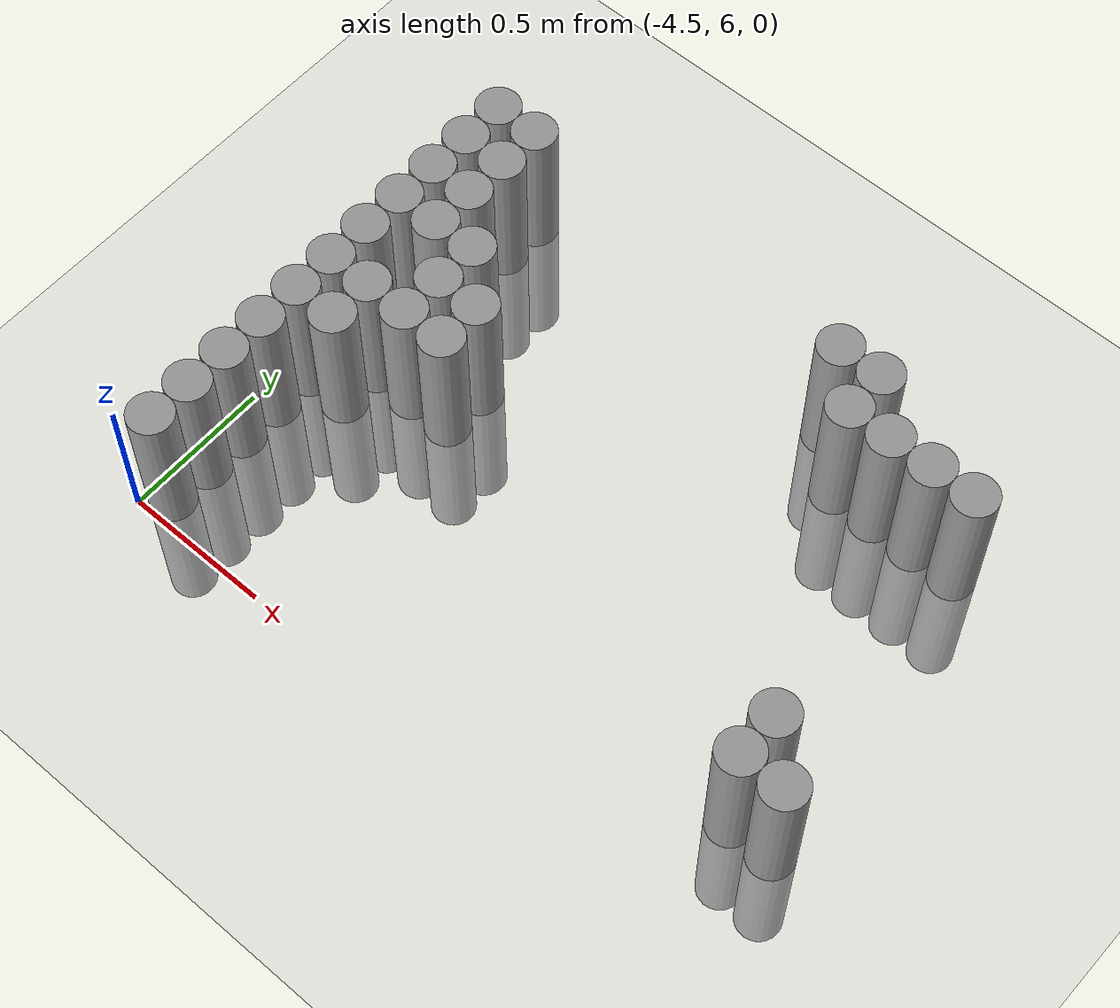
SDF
<sdf version="1.6">
 <world name="default">
  <model name="ground_plane">
   <static>1</static>
   <static>1</static>
   <link name="link">
    <collision name="collision">
     <geometry><plane><normal>0 0 1</normal><size>100 100</size></plane></geometry>
     <surface><friction><ode><mu>100</mu><mu2>50</mu2></ode></friction></surface>
    </collision>
    <visual name="visual">
     <cast_shadows>0</cast_shadows>
     <geometry><plane><normal>0 0 1</normal><size>100 100</size></plane></geometry>
     <material>
      <script><uri>file://media/materials/scripts/gazebo.material</uri><name>Gazebo/Grey</name></script>
     </material>
    </visual>
   </link>
  </model>
  <model name="unit_cylinder_102">
   <static>1</static>
   <pose>-4.425000 6.075000 0.000000 0.000000 0.000000 0.000000</pose>
   <link name="link">
    <inertial>
     <mass>1</mass>
     <inertia><ixx>0.145833</ixx><ixy>0</ixy><ixz>0</ixz><iyy>0.145833</iyy><iyz>0</iyz><izz>0.125</izz></inertia>
    </inertial>
    <collision name="collision">
     <geometry><cylinder><radius>0.075000</radius><length>1</length></cylinder></geometry>
    </collision>
    <visual name="visual">
     <geometry><cylinder><radius>0.075000</radius><length>1</length></cylinder></geometry>
     <material>
      <script><name>Gazebo/Grey</name><uri>file://media/materials/scripts/gazebo.material</uri></script>
     </material>
    </visual>
   </link>
  </model>
  <model name="unit_cylinder_103">
   <static>1</static>
   <pose>-4.425000 6.225000 0.000000 0.000000 0.000000 0.000000</pose>
   <link name="link">
    <inertial>
     <mass>1</mass>
     <inertia><ixx>0.145833</ixx><ixy>0</ixy><ixz>0</ixz><iyy>0.145833</iyy><iyz>0</iyz><izz>0.125</izz></inertia>
    </inertial>
    <collision name="collision">
     <geometry><cylinder><radius>0.075000</radius><length>1</length></cylinder></geometry>
    </collision>
    <visual name="visual">
     <geometry><cylinder><radius>0.075000</radius><length>1</length></cylinder></geometry>
     <material>
      <script><name>Gazebo/Grey</name><uri>file://media/materials/scripts/gazebo.material</uri></script>
     </material>
    </visual>
   </link>
  </model>
  <model name="unit_cylinder_104">
   <static>1</static>
   <pose>-4.425000 6.375000 0.000000 0.000000 0.000000 0.000000</pose>
   <link name="link">
    <inertial>
     <mass>1</mass>
     <inertia><ixx>0.145833</ixx><ixy>0</ixy><ixz>0</ixz><iyy>0.145833</iyy><iyz>0</iyz><izz>0.125</izz></inertia>
    </inertial>
    <collision name="collision">
     <geometry><cylinder><radius>0.075000</radius><length>1</length></cylinder></geometry>
    </collision>
    <visual name="visual">
     <geometry><cylinder><radius>0.075000</radius><length>1</length></cylinder></geometry>
     <material>
      <script><name>Gazebo/Grey</name><uri>file://media/materials/scripts/gazebo.material</uri></script>
     </material>
    </visual>
   </link>
  </model>
  <model name="unit_cylinder_105">
   <static>1</static>
   <pose>-4.425000 6.525000 0.000000 0.000000 0.000000 0.000000</pose>
   <link name="link">
    <inertial>
     <mass>1</mass>
     <inertia><ixx>0.145833</ixx><ixy>0</ixy><ixz>0</ixz><iyy>0.145833</iyy><iyz>0</iyz><izz>0.125</izz></inertia>
    </inertial>
    <collision name="collision">
     <geometry><cylinder><radius>0.075000</radius><length>1</length></cylinder></geometry>
    </collision>
    <visual name="visual">
     <geometry><cylinder><radius>0.075000</radius><length>1</length></cylinder></geometry>
     <material>
      <script><name>Gazebo/Grey</name><uri>file://media/materials/scripts/gazebo.material</uri></script>
     </material>
    </visual>
   </link>
  </model>
  <model name="unit_cylinder_106">
   <static>1</static>
   <pose>-4.425000 6.675000 0.000000 0.000000 0.000000 0.000000</pose>
   <link name="link">
    <inertial>
     <mass>1</mass>
     <inertia><ixx>0.145833</ixx><ixy>0</ixy><ixz>0</ixz><iyy>0.145833</iyy><iyz>0</iyz><izz>0.125</izz></inertia>
    </inertial>
    <collision name="collision">
     <geometry><cylinder><radius>0.075000</radius><length>1</length></cylinder></geometry>
    </collision>
    <visual name="visual">
     <geometry><cylinder><radius>0.075000</radius><length>1</length></cylinder></geometry>
     <material>
      <script><name>Gazebo/Grey</name><uri>file://media/materials/scripts/gazebo.material</uri></script>
     </material>
    </visual>
   </link>
  </model>
  <model name="unit_cylinder_107">
   <static>1</static>
   <pose>-4.425000 6.825000 0.000000 0.000000 0.000000 0.000000</pose>
   <link name="link">
    <inertial>
     <mass>1</mass>
     <inertia><ixx>0.145833</ixx><ixy>0</ixy><ixz>0</ixz><iyy>0.145833</iyy><iyz>0</iyz><izz>0.125</izz></inertia>
    </inertial>
    <collision name="collision">
     <geometry><cylinder><radius>0.075000</radius><length>1</length></cylinder></geometry>
    </collision>
    <visual name="visual">
     <geometry><cylinder><radius>0.075000</radius><length>1</length></cylinder></geometry>
     <material>
      <script><name>Gazebo/Grey</name><uri>file://media/materials/scripts/gazebo.material</uri></script>
     </material>
    </visual>
   </link>
  </model>
  <model name="unit_cylinder_108">
   <static>1</static>
   <pose>-4.425000 6.975000 0.000000 0.000000 0.000000 0.000000</pose>
   <link name="link">
    <inertial>
     <mass>1</mass>
     <inertia><ixx>0.145833</ixx><ixy>0</ixy><ixz>0</ixz><iyy>0.145833</iyy><iyz>0</iyz><izz>0.125</izz></inertia>
    </inertial>
    <collision name="collision">
     <geometry><cylinder><radius>0.075000</radius><length>1</length></cylinder></geometry>
    </collision>
    <visual name="visual">
     <geometry><cylinder><radius>0.075000</radius><length>1</length></cylinder></geometry>
     <material>
      <script><name>Gazebo/Grey</name><uri>file://media/materials/scripts/gazebo.material</uri></script>
     </material>
    </visual>
   </link>
  </model>
  <model name="unit_cylinder_109">
   <static>1</static>
   <pose>-4.425000 7.125000 0.000000 0.000000 0.000000 0.000000</pose>
   <link name="link">
    <inertial>
     <mass>1</mass>
     <inertia><ixx>0.145833</ixx><ixy>0</ixy><ixz>0</ixz><iyy>0.145833</iyy><iyz>0</iyz><izz>0.125</izz></inertia>
    </inertial>
    <collision name="collision">
     <geometry><cylinder><radius>0.075000</radius><length>1</length></cylinder></geometry>
    </collision>
    <visual name="visual">
     <geometry><cylinder><radius>0.075000</radius><length>1</length></cylinder></geometry>
     <material>
      <script><name>Gazebo/Grey</name><uri>file://media/materials/scripts/gazebo.material</uri></script>
     </material>
    </visual>
   </link>
  </model>
  <model name="unit_cylinder_110">
   <static>1</static>
   <pose>-4.425000 7.275000 0.000000 0.000000 0.000000 0.000000</pose>
   <link name="link">
    <inertial>
     <mass>1</mass>
     <inertia><ixx>0.145833</ixx><ixy>0</ixy><ixz>0</ixz><iyy>0.145833</iyy><iyz>0</iyz><izz>0.125</izz></inertia>
    </inertial>
    <collision name="collision">
     <geometry><cylinder><radius>0.075000</radius><length>1</length></cylinder></geometry>
    </collision>
    <visual name="visual">
     <geometry><cylinder><radius>0.075000</radius><length>1</length></cylinder></geometry>
     <material>
      <script><name>Gazebo/Grey</name><uri>file://media/materials/scripts/gazebo.material</uri></script>
     </material>
    </visual>
   </link>
  </model>
  <model name="unit_cylinder_111">
   <static>1</static>
   <pose>-4.425000 7.425000 0.000000 0.000000 0.000000 0.000000</pose>
   <link name="link">
    <inertial>
     <mass>1</mass>
     <inertia><ixx>0.145833</ixx><ixy>0</ixy><ixz>0</ixz><iyy>0.145833</iyy><iyz>0</iyz><izz>0.125</izz></inertia>
    </inertial>
    <collision name="collision">
     <geometry><cylinder><radius>0.075000</radius><length>1</length></cylinder></geometry>
    </collision>
    <visual name="visual">
     <geometry><cylinder><radius>0.075000</radius><length>1</length></cylinder></geometry>
     <material>
      <script><name>Gazebo/Grey</name><uri>file://media/materials/scripts/gazebo.material</uri></script>
     </material>
    </visual>
   </link>
  </model>
  <model name="unit_cylinder_112">
   <static>1</static>
   <pose>-4.425000 7.575000 0.000000 0.000000 0.000000 0.000000</pose>
   <link name="link">
    <inertial>
     <mass>1</mass>
     <inertia><ixx>0.145833</ixx><ixy>0</ixy><ixz>0</ixz><iyy>0.145833</iyy><iyz>0</iyz><izz>0.125</izz></inertia>
    </inertial>
    <collision name="collision">
     <geometry><cylinder><radius>0.075000</radius><length>1</length></cylinder></geometry>
    </collision>
    <visual name="visual">
     <geometry><cylinder><radius>0.075000</radius><length>1</length></cylinder></geometry>
     <material>
      <script><name>Gazebo/Grey</name><uri>file://media/materials/scripts/gazebo.material</uri></script>
     </material>
    </visual>
   </link>
  </model>
  <model name="unit_cylinder_126">
   <static>1</static>
   <pose>-4.275000 6.675000 0.000000 0.000000 0.000000 0.000000</pose>
   <link name="link">
    <inertial>
     <mass>1</mass>
     <inertia><ixx>0.145833</ixx><ixy>0</ixy><ixz>0</ixz><iyy>0.145833</iyy><iyz>0</iyz><izz>0.125</izz></inertia>
    </inertial>
    <collision name="collision">
     <geometry><cylinder><radius>0.075000</radius><length>1</length></cylinder></geometry>
    </collision>
    <visual name="visual">
     <geometry><cylinder><radius>0.075000</radius><length>1</length></cylinder></geometry>
     <material>
      <script><name>Gazebo/Grey</name><uri>file://media/materials/scripts/gazebo.material</uri></script>
     </material>
    </visual>
   </link>
  </model>
  <model name="unit_cylinder_127">
   <static>1</static>
   <pose>-4.275000 6.825000 0.000000 0.000000 0.000000 0.000000</pose>
   <link name="link">
    <inertial>
     <mass>1</mass>
     <inertia><ixx>0.145833</ixx><ixy>0</ixy><ixz>0</ixz><iyy>0.145833</iyy><iyz>0</iyz><izz>0.125</izz></inertia>
    </inertial>
    <collision name="collision">
     <geometry><cylinder><radius>0.075000</radius><length>1</length></cylinder></geometry>
    </collision>
    <visual name="visual">
     <geometry><cylinder><radius>0.075000</radius><length>1</length></cylinder></geometry>
     <material>
      <script><name>Gazebo/Grey</name><uri>file://media/materials/scripts/gazebo.material</uri></script>
     </material>
    </visual>
   </link>
  </model>
  <model name="unit_cylinder_128">
   <static>1</static>
   <pose>-4.275000 7.125000 0.000000 0.000000 0.000000 0.000000</pose>
   <link name="link">
    <inertial>
     <mass>1</mass>
     <inertia><ixx>0.145833</ixx><ixy>0</ixy><ixz>0</ixz><iyy>0.145833</iyy><iyz>0</iyz><izz>0.125</izz></inertia>
    </inertial>
    <collision name="collision">
     <geometry><cylinder><radius>0.075000</radius><length>1</length></cylinder></geometry>
    </collision>
    <visual name="visual">
     <geometry><cylinder><radius>0.075000</radius><length>1</length></cylinder></geometry>
     <material>
      <script><name>Gazebo/Grey</name><uri>file://media/materials/scripts/gazebo.material</uri></script>
     </material>
    </visual>
   </link>
  </model>
  <model name="unit_cylinder_129">
   <static>1</static>
   <pose>-4.275000 7.275000 0.000000 0.000000 0.000000 0.000000</pose>
   <link name="link">
    <inertial>
     <mass>1</mass>
     <inertia><ixx>0.145833</ixx><ixy>0</ixy><ixz>0</ixz><iyy>0.145833</iyy><iyz>0</iyz><izz>0.125</izz></inertia>
    </inertial>
    <collision name="collision">
     <geometry><cylinder><radius>0.075000</radius><length>1</length></cylinder></geometry>
    </collision>
    <visual name="visual">
     <geometry><cylinder><radius>0.075000</radius><length>1</length></cylinder></geometry>
     <material>
      <script><name>Gazebo/Grey</name><uri>file://media/materials/scripts/gazebo.material</uri></script>
     </material>
    </visual>
   </link>
  </model>
  <model name="unit_cylinder_130">
   <static>1</static>
   <pose>-4.275000 7.425000 0.000000 0.000000 0.000000 0.000000</pose>
   <link name="link">
    <inertial>
     <mass>1</mass>
     <inertia><ixx>0.145833</ixx><ixy>0</ixy><ixz>0</ixz><iyy>0.145833</iyy><iyz>0</iyz><izz>0.125</izz></inertia>
    </inertial>
    <collision name="collision">
     <geometry><cylinder><radius>0.075000</radius><length>1</length></cylinder></geometry>
    </collision>
    <visual name="visual">
     <geometry><cylinder><radius>0.075000</radius><length>1</length></cylinder></geometry>
     <material>
      <script><name>Gazebo/Grey</name><uri>file://media/materials/scripts/gazebo.material</uri></script>
     </material>
    </visual>
   </link>
  </model>
  <model name="unit_cylinder_131">
   <static>1</static>
   <pose>-4.275000 7.575000 0.000000 0.000000 0.000000 0.000000</pose>
   <link name="link">
    <inertial>
     <mass>1</mass>
     <inertia><ixx>0.145833</ixx><ixy>0</ixy><ixz>0</ixz><iyy>0.145833</iyy><iyz>0</iyz><izz>0.125</izz></inertia>
    </inertial>
    <collision name="collision">
     <geometry><cylinder><radius>0.075000</radius><length>1</length></cylinder></geometry>
    </collision>
    <visual name="visual">
     <geometry><cylinder><radius>0.075000</radius><length>1</length></cylinder></geometry>
     <material>
      <script><name>Gazebo/Grey</name><uri>file://media/materials/scripts/gazebo.material</uri></script>
     </material>
    </visual>
   </link>
  </model>
  <model name="unit_cylinder_141">
   <static>1</static>
   <pose>-4.125000 6.825000 0.000000 0.000000 0.000000 0.000000</pose>
   <link name="link">
    <inertial>
     <mass>1</mass>
     <inertia><ixx>0.145833</ixx><ixy>0</ixy><ixz>0</ixz><iyy>0.145833</iyy><iyz>0</iyz><izz>0.125</izz></inertia>
    </inertial>
    <collision name="collision">
     <geometry><cylinder><radius>0.075000</radius><length>1</length></cylinder></geometry>
    </collision>
    <visual name="visual">
     <geometry><cylinder><radius>0.075000</radius><length>1</length></cylinder></geometry>
     <material>
      <script><name>Gazebo/Grey</name><uri>file://media/materials/scripts/gazebo.material</uri></script>
     </material>
    </visual>
   </link>
  </model>
  <model name="unit_cylinder_142">
   <static>1</static>
   <pose>-4.125000 6.975000 0.000000 0.000000 0.000000 0.000000</pose>
   <link name="link">
    <inertial>
     <mass>1</mass>
     <inertia><ixx>0.145833</ixx><ixy>0</ixy><ixz>0</ixz><iyy>0.145833</iyy><iyz>0</iyz><izz>0.125</izz></inertia>
    </inertial>
    <collision name="collision">
     <geometry><cylinder><radius>0.075000</radius><length>1</length></cylinder></geometry>
    </collision>
    <visual name="visual">
     <geometry><cylinder><radius>0.075000</radius><length>1</length></cylinder></geometry>
     <material>
      <script><name>Gazebo/Grey</name><uri>file://media/materials/scripts/gazebo.material</uri></script>
     </material>
    </visual>
   </link>
  </model>
  <model name="unit_cylinder_143">
   <static>1</static>
   <pose>-4.125000 7.125000 0.000000 0.000000 0.000000 0.000000</pose>
   <link name="link">
    <inertial>
     <mass>1</mass>
     <inertia><ixx>0.145833</ixx><ixy>0</ixy><ixz>0</ixz><iyy>0.145833</iyy><iyz>0</iyz><izz>0.125</izz></inertia>
    </inertial>
    <collision name="collision">
     <geometry><cylinder><radius>0.075000</radius><length>1</length></cylinder></geometry>
    </collision>
    <visual name="visual">
     <geometry><cylinder><radius>0.075000</radius><length>1</length></cylinder></geometry>
     <material>
      <script><name>Gazebo/Grey</name><uri>file://media/materials/scripts/gazebo.material</uri></script>
     </material>
    </visual>
   </link>
  </model>
  <model name="unit_cylinder_145">
   <static>1</static>
   <pose>-3.975000 6.825000 0.000000 0.000000 0.000000 0.000000</pose>
   <link name="link">
    <inertial>
     <mass>1</mass>
     <inertia><ixx>0.145833</ixx><ixy>0</ixy><ixz>0</ixz><iyy>0.145833</iyy><iyz>0</iyz><izz>0.125</izz></inertia>
    </inertial>
    <collision name="collision">
     <geometry><cylinder><radius>0.075000</radius><length>1</length></cylinder></geometry>
    </collision>
    <visual name="visual">
     <geometry><cylinder><radius>0.075000</radius><length>1</length></cylinder></geometry>
     <material>
      <script><name>Gazebo/Grey</name><uri>file://media/materials/scripts/gazebo.material</uri></script>
     </material>
    </visual>
   </link>
  </model>
  <model name="unit_cylinder_146">
   <static>1</static>
   <pose>-3.975000 6.975000 0.000000 0.000000 0.000000 0.000000</pose>
   <link name="link">
    <inertial>
     <mass>1</mass>
     <inertia><ixx>0.145833</ixx><ixy>0</ixy><ixz>0</ixz><iyy>0.145833</iyy><iyz>0</iyz><izz>0.125</izz></inertia>
    </inertial>
    <collision name="collision">
     <geometry><cylinder><radius>0.075000</radius><length>1</length></cylinder></geometry>
    </collision>
    <visual name="visual">
     <geometry><cylinder><radius>0.075000</radius><length>1</length></cylinder></geometry>
     <material>
      <script><name>Gazebo/Grey</name><uri>file://media/materials/scripts/gazebo.material</uri></script>
     </material>
    </visual>
   </link>
  </model>
  <model name="unit_cylinder_152">
   <static>1</static>
   <pose>-3.075000 7.575000 0.000000 0.000000 0.000000 0.000000</pose>
   <link name="link">
    <inertial>
     <mass>1</mass>
     <inertia><ixx>0.145833</ixx><ixy>0</ixy><ixz>0</ixz><iyy>0.145833</iyy><iyz>0</iyz><izz>0.125</izz></inertia>
    </inertial>
    <collision name="collision">
     <geometry><cylinder><radius>0.075000</radius><length>1</length></cylinder></geometry>
    </collision>
    <visual name="visual">
     <geometry><cylinder><radius>0.075000</radius><length>1</length></cylinder></geometry>
     <material>
      <script><name>Gazebo/Grey</name><uri>file://media/materials/scripts/gazebo.material</uri></script>
     </material>
    </visual>
   </link>
  </model>
  <model name="unit_cylinder_158">
   <static>1</static>
   <pose>-2.925000 7.425000 0.000000 0.000000 0.000000 0.000000</pose>
   <link name="link">
    <inertial>
     <mass>1</mass>
     <inertia><ixx>0.145833</ixx><ixy>0</ixy><ixz>0</ixz><iyy>0.145833</iyy><iyz>0</iyz><izz>0.125</izz></inertia>
    </inertial>
    <collision name="collision">
     <geometry><cylinder><radius>0.075000</radius><length>1</length></cylinder></geometry>
    </collision>
    <visual name="visual">
     <geometry><cylinder><radius>0.075000</radius><length>1</length></cylinder></geometry>
     <material>
      <script><name>Gazebo/Grey</name><uri>file://media/materials/scripts/gazebo.material</uri></script>
     </material>
    </visual>
   </link>
  </model>
  <model name="unit_cylinder_159">
   <static>1</static>
   <pose>-2.925000 7.575000 0.000000 0.000000 0.000000 0.000000</pose>
   <link name="link">
    <inertial>
     <mass>1</mass>
     <inertia><ixx>0.145833</ixx><ixy>0</ixy><ixz>0</ixz><iyy>0.145833</iyy><iyz>0</iyz><izz>0.125</izz></inertia>
    </inertial>
    <collision name="collision">
     <geometry><cylinder><radius>0.075000</radius><length>1</length></cylinder></geometry>
    </collision>
    <visual name="visual">
     <geometry><cylinder><radius>0.075000</radius><length>1</length></cylinder></geometry>
     <material>
      <script><name>Gazebo/Grey</name><uri>file://media/materials/scripts/gazebo.material</uri></script>
     </material>
    </visual>
   </link>
  </model>
  <model name="unit_cylinder_165">
   <static>1</static>
   <pose>-2.775000 7.425000 0.000000 0.000000 0.000000 0.000000</pose>
   <link name="link">
    <inertial>
     <mass>1</mass>
     <inertia><ixx>0.145833</ixx><ixy>0</ixy><ixz>0</ixz><iyy>0.145833</iyy><iyz>0</iyz><izz>0.125</izz></inertia>
    </inertial>
    <collision name="collision">
     <geometry><cylinder><radius>0.075000</radius><length>1</length></cylinder></geometry>
    </collision>
    <visual name="visual">
     <geometry><cylinder><radius>0.075000</radius><length>1</length></cylinder></geometry>
     <material>
      <script><name>Gazebo/Grey</name><uri>file://media/materials/scripts/gazebo.material</uri></script>
     </material>
    </visual>
   </link>
  </model>
  <model name="unit_cylinder_168">
   <static>1</static>
   <pose>-2.625000 7.425000 0.000000 0.000000 0.000000 0.000000</pose>
   <link name="link">
    <inertial>
     <mass>1</mass>
     <inertia><ixx>0.145833</ixx><ixy>0</ixy><ixz>0</ixz><iyy>0.145833</iyy><iyz>0</iyz><izz>0.125</izz></inertia>
    </inertial>
    <collision name="collision">
     <geometry><cylinder><radius>0.075000</radius><length>1</length></cylinder></geometry>
    </collision>
    <visual name="visual">
     <geometry><cylinder><radius>0.075000</radius><length>1</length></cylinder></geometry>
     <material>
      <script><name>Gazebo/Grey</name><uri>file://media/materials/scripts/gazebo.material</uri></script>
     </material>
    </visual>
   </link>
  </model>
  <model name="unit_cylinder_170">
   <static>1</static>
   <pose>-2.475000 6.375000 0.000000 0.000000 0.000000 0.000000</pose>
   <link name="link">
    <inertial>
     <mass>1</mass>
     <inertia><ixx>0.145833</ixx><ixy>0</ixy><ixz>0</ixz><iyy>0.145833</iyy><iyz>0</iyz><izz>0.125</izz></inertia>
    </inertial>
    <collision name="collision">
     <geometry><cylinder><radius>0.075000</radius><length>1</length></cylinder></geometry>
    </collision>
    <visual name="visual">
     <geometry><cylinder><radius>0.075000</radius><length>1</length></cylinder></geometry>
     <material>
      <script><name>Gazebo/Grey</name><uri>file://media/materials/scripts/gazebo.material</uri></script>
     </material>
    </visual>
   </link>
  </model>
  <model name="unit_cylinder_171">
   <static>1</static>
   <pose>-2.475000 6.525000 0.000000 0.000000 0.000000 0.000000</pose>
   <link name="link">
    <inertial>
     <mass>1</mass>
     <inertia><ixx>0.145833</ixx><ixy>0</ixy><ixz>0</ixz><iyy>0.145833</iyy><iyz>0</iyz><izz>0.125</izz></inertia>
    </inertial>
    <collision name="collision">
     <geometry><cylinder><radius>0.075000</radius><length>1</length></cylinder></geometry>
    </collision>
    <visual name="visual">
     <geometry><cylinder><radius>0.075000</radius><length>1</length></cylinder></geometry>
     <material>
      <script><name>Gazebo/Grey</name><uri>file://media/materials/scripts/gazebo.material</uri></script>
     </material>
    </visual>
   </link>
  </model>
  <model name="unit_cylinder_172">
   <static>1</static>
   <pose>-2.475000 7.425000 0.000000 0.000000 0.000000 0.000000</pose>
   <link name="link">
    <inertial>
     <mass>1</mass>
     <inertia><ixx>0.145833</ixx><ixy>0</ixy><ixz>0</ixz><iyy>0.145833</iyy><iyz>0</iyz><izz>0.125</izz></inertia>
    </inertial>
    <collision name="collision">
     <geometry><cylinder><radius>0.075000</radius><length>1</length></cylinder></geometry>
    </collision>
    <visual name="visual">
     <geometry><cylinder><radius>0.075000</radius><length>1</length></cylinder></geometry>
     <material>
      <script><name>Gazebo/Grey</name><uri>file://media/materials/scripts/gazebo.material</uri></script>
     </material>
    </visual>
   </link>
  </model>
  <model name="unit_cylinder_175">
   <static>1</static>
   <pose>-2.325000 6.375000 0.000000 0.000000 0.000000 0.000000</pose>
   <link name="link">
    <inertial>
     <mass>1</mass>
     <inertia><ixx>0.145833</ixx><ixy>0</ixy><ixz>0</ixz><iyy>0.145833</iyy><iyz>0</iyz><izz>0.125</izz></inertia>
    </inertial>
    <collision name="collision">
     <geometry><cylinder><radius>0.075000</radius><length>1</length></cylinder></geometry>
    </collision>
    <visual name="visual">
     <geometry><cylinder><radius>0.075000</radius><length>1</length></cylinder></geometry>
     <material>
      <script><name>Gazebo/Grey</name><uri>file://media/materials/scripts/gazebo.material</uri></script>
     </material>
    </visual>
   </link>
  </model>
 </world>
</sdf>
